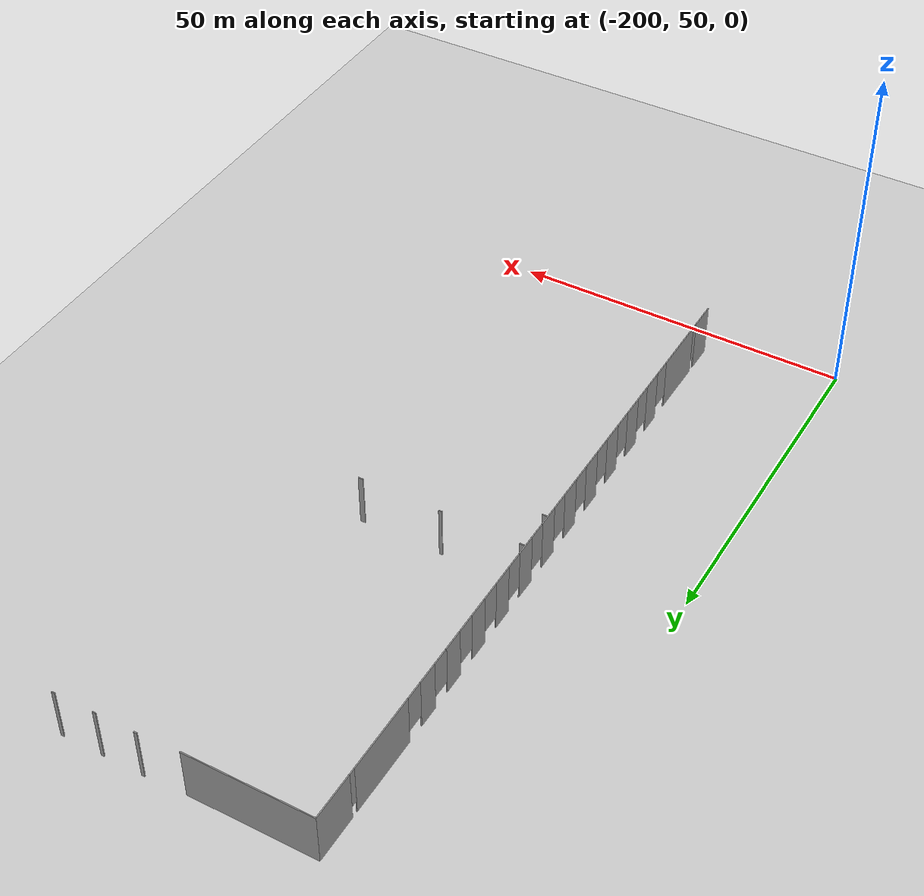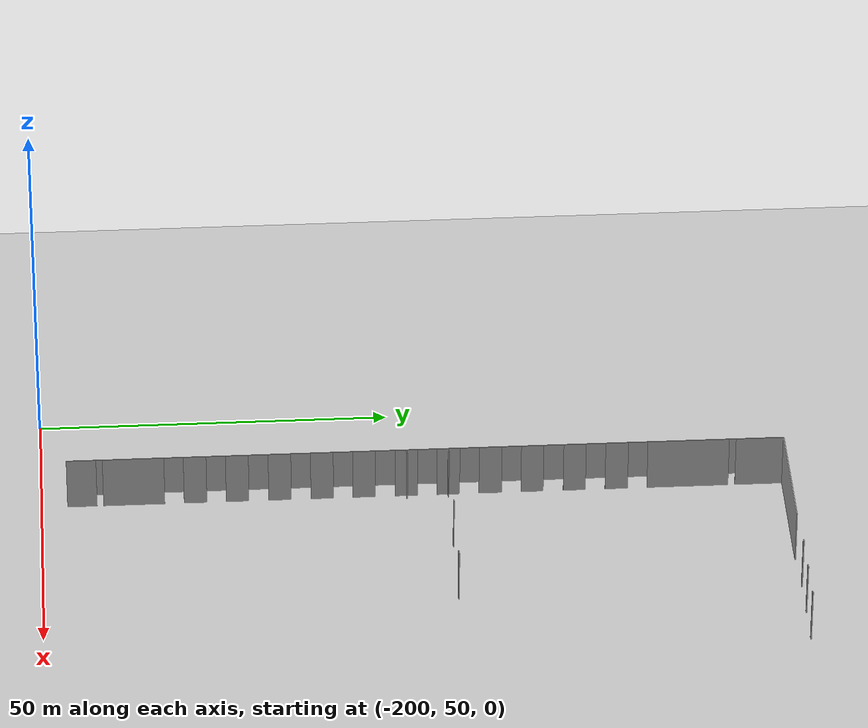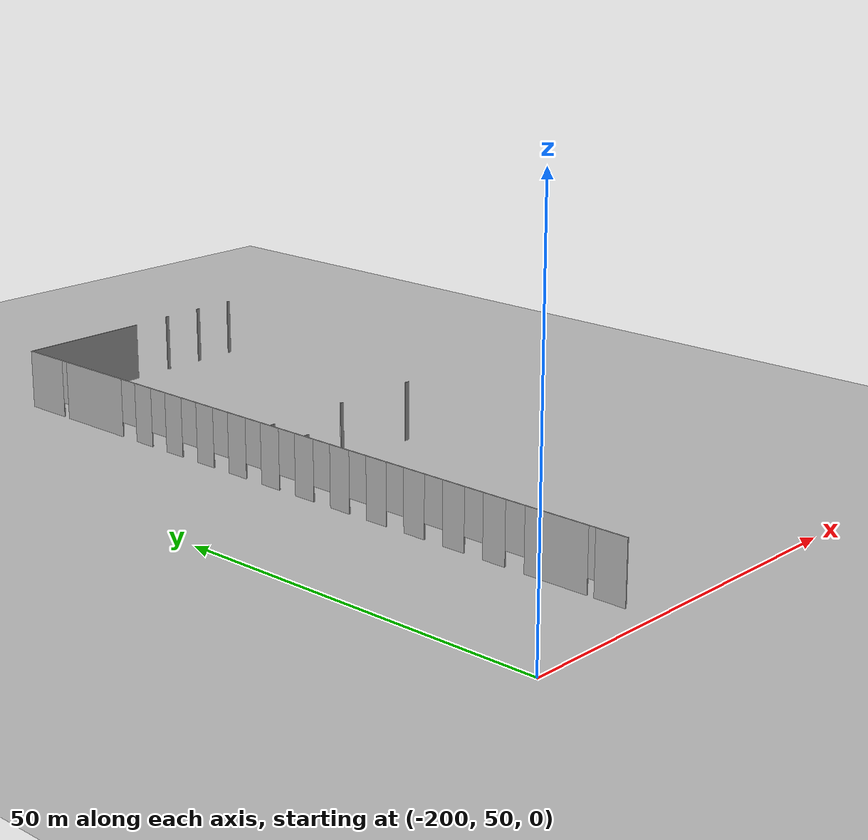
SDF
<sdf version="1.7">
 <world name="default">
  <model name="ground_plane">
   <static>1</static>
   <link name="link">
    <collision name="collision">
     <geometry><plane><normal>0 0 1</normal><size>100 100</size></plane></geometry>
     <surface><friction><ode><mu>100</mu><mu2>50</mu2></ode></friction></surface>
    </collision>
    <visual name="visual">
     <cast_shadows>0</cast_shadows>
     <geometry><plane><normal>0 0 1</normal><size>100 100</size></plane></geometry>
     <material>
      <script><uri>file://media/materials/scripts/gazebo.material</uri><name>Gazebo/Grey</name></script>
     </material>
    </visual>
   </link>
  </model>
  <model name="AM_Wall">
   <pose>-90.484 78.0434 0 0 -0 0</pose>
   <link name="Wall_17">
    <pose>-90.348 26.67 0 0 -0 1.5708</pose>
    <visual name="Wall_17_Visual_0">
     <pose>-48.8954 0 4 0 -0 0</pose>
     <geometry><box><size>4.20921 0.15 8</size></box></geometry>
     <material>
      <script><uri>file://media/materials/scripts/gazebo.material</uri><name>Gazebo/Grey</name></script>
      <ambient>1 1 1 1</ambient>
     </material>
     <meta><layer>0</layer></meta>
    </visual>
    <collision name="Wall_17_Collision_0">
     <geometry><box><size>4.20921 0.15 8</size></box></geometry>
     <pose>-48.8954 0 4 0 -0 0</pose>
    </collision>
    <visual name="Wall_17_Visual_1">
     <pose>-41.5368 0 4 0 -0 0</pose>
     <geometry><box><size>8.70797 0.15 8</size></box></geometry>
     <material>
      <script><uri>file://media/materials/scripts/gazebo.material</uri><name>Gazebo/Grey</name></script>
      <ambient>1 1 1 1</ambient>
     </material>
     <meta><layer>0</layer></meta>
    </visual>
    <collision name="Wall_17_Collision_1">
     <geometry><box><size>8.70797 0.15 8</size></box></geometry>
     <pose>-41.5368 0 4 0 -0 0</pose>
    </collision>
    <visual name="Wall_17_Visual_2">
     <pose>-32.823 0 4 0 -0 0</pose>
     <geometry><box><size>3.2326 0.15 8</size></box></geometry>
     <material>
      <script><uri>file://media/materials/scripts/gazebo.material</uri><name>Gazebo/Grey</name></script>
      <ambient>1 1 1 1</ambient>
     </material>
     <meta><layer>0</layer></meta>
    </visual>
    <collision name="Wall_17_Collision_2">
     <geometry><box><size>3.2326 0.15 8</size></box></geometry>
     <pose>-32.823 0 4 0 -0 0</pose>
    </collision>
    <visual name="Wall_17_Visual_3">
     <pose>-26.8406 0 4 0 -0 0</pose>
     <geometry><box><size>3.24213 0.15 8</size></box></geometry>
     <material>
      <script><uri>file://media/materials/scripts/gazebo.material</uri><name>Gazebo/Grey</name></script>
      <ambient>1 1 1 1</ambient>
     </material>
     <meta><layer>0</layer></meta>
    </visual>
    <collision name="Wall_17_Collision_3">
     <geometry><box><size>3.24213 0.15 8</size></box></geometry>
     <pose>-26.8406 0 4 0 -0 0</pose>
    </collision>
    <visual name="Wall_17_Visual_4">
     <pose>-20.8082 0 4 0 -0 0</pose>
     <geometry><box><size>3.2182 0.15 8</size></box></geometry>
     <material>
      <script><uri>file://media/materials/scripts/gazebo.material</uri><name>Gazebo/Grey</name></script>
      <ambient>1 1 1 1</ambient>
     </material>
     <meta><layer>0</layer></meta>
    </visual>
    <collision name="Wall_17_Collision_4">
     <geometry><box><size>3.2182 0.15 8</size></box></geometry>
     <pose>-20.8082 0 4 0 -0 0</pose>
    </collision>
    <visual name="Wall_17_Visual_5">
     <pose>-14.7991 0 4 0 -0 0</pose>
     <geometry><box><size>3.21936 0.15 8</size></box></geometry>
     <material>
      <script><uri>file://media/materials/scripts/gazebo.material</uri><name>Gazebo/Grey</name></script>
      <ambient>1 1 1 1</ambient>
     </material>
     <meta><layer>0</layer></meta>
    </visual>
    <collision name="Wall_17_Collision_5">
     <geometry><box><size>3.21936 0.15 8</size></box></geometry>
     <pose>-14.7991 0 4 0 -0 0</pose>
    </collision>
    <visual name="Wall_17_Visual_6">
     <pose>-8.81504 0 4 0 -0 0</pose>
     <geometry><box><size>3.1983 0.15 8</size></box></geometry>
     <material>
      <script><uri>file://media/materials/scripts/gazebo.material</uri><name>Gazebo/Grey</name></script>
      <ambient>1 1 1 1</ambient>
     </material>
     <meta><layer>0</layer></meta>
    </visual>
    <collision name="Wall_17_Collision_6">
     <geometry><box><size>3.1983 0.15 8</size></box></geometry>
     <pose>-8.81504 0 4 0 -0 0</pose>
    </collision>
    <visual name="Wall_17_Visual_7">
     <pose>-2.81126 0 4 0 -0 0</pose>
     <geometry><box><size>3.1983 0.15 8</size></box></geometry>
     <material>
      <script><uri>file://media/materials/scripts/gazebo.material</uri><name>Gazebo/Grey</name></script>
      <ambient>1 1 1 1</ambient>
     </material>
     <meta><layer>0</layer></meta>
    </visual>
    <collision name="Wall_17_Collision_7">
     <geometry><box><size>3.1983 0.15 8</size></box></geometry>
     <pose>-2.81126 0 4 0 -0 0</pose>
    </collision>
    <visual name="Wall_17_Visual_8">
     <pose>3.19252 0 4 0 -0 0</pose>
     <geometry><box><size>3.22854 0.15 8</size></box></geometry>
     <material>
      <script><uri>file://media/materials/scripts/gazebo.material</uri><name>Gazebo/Grey</name></script>
      <ambient>1 1 1 1</ambient>
     </material>
     <meta><layer>0</layer></meta>
    </visual>
    <collision name="Wall_17_Collision_8">
     <geometry><box><size>3.22854 0.15 8</size></box></geometry>
     <pose>3.19252 0 4 0 -0 0</pose>
    </collision>
    <visual name="Wall_17_Visual_9">
     <pose>9.17362 0 4 0 -0 0</pose>
     <geometry><box><size>3.24367 0.15 8</size></box></geometry>
     <material>
      <script><uri>file://media/materials/scripts/gazebo.material</uri><name>Gazebo/Grey</name></script>
      <ambient>1 1 1 1</ambient>
     </material>
     <meta><layer>0</layer></meta>
    </visual>
    <collision name="Wall_17_Collision_9">
     <geometry><box><size>3.24367 0.15 8</size></box></geometry>
     <pose>9.17362 0 4 0 -0 0</pose>
    </collision>
    <visual name="Wall_17_Visual_10">
     <pose>15.1472 0 4 0 -0 0</pose>
     <geometry><box><size>3.18317 0.15 8</size></box></geometry>
     <material>
      <script><uri>file://media/materials/scripts/gazebo.material</uri><name>Gazebo/Grey</name></script>
      <ambient>1 1 1 1</ambient>
     </material>
     <meta><layer>0</layer></meta>
    </visual>
    <collision name="Wall_17_Collision_10">
     <geometry><box><size>3.18317 0.15 8</size></box></geometry>
     <pose>15.1472 0 4 0 -0 0</pose>
    </collision>
    <visual name="Wall_17_Visual_11">
     <pose>21.1812 0 4 0 -0 0</pose>
     <geometry><box><size>3.18318 0.15 8</size></box></geometry>
     <material>
      <script><uri>file://media/materials/scripts/gazebo.material</uri><name>Gazebo/Grey</name></script>
      <ambient>1 1 1 1</ambient>
     </material>
     <meta><layer>0</layer></meta>
    </visual>
    <collision name="Wall_17_Collision_11">
     <geometry><box><size>3.18318 0.15 8</size></box></geometry>
     <pose>21.1812 0 4 0 -0 0</pose>
    </collision>
    <visual name="Wall_17_Visual_12">
     <pose>27.1812 0 4 0 -0 0</pose>
     <geometry><box><size>3.2361 0.15 8</size></box></geometry>
     <material>
      <script><uri>file://media/materials/scripts/gazebo.material</uri><name>Gazebo/Grey</name></script>
      <ambient>1 1 1 1</ambient>
     </material>
     <meta><layer>0</layer></meta>
    </visual>
    <collision name="Wall_17_Collision_12">
     <geometry><box><size>3.2361 0.15 8</size></box></geometry>
     <pose>27.1812 0 4 0 -0 0</pose>
    </collision>
    <visual name="Wall_17_Visual_13">
     <pose>37.366 0 4 0 -0 0</pose>
     <geometry><box><size>11.6134 0.15 8</size></box></geometry>
     <material>
      <script><uri>file://media/materials/scripts/gazebo.material</uri><name>Gazebo/Grey</name></script>
      <ambient>1 1 1 1</ambient>
     </material>
     <meta><layer>0</layer></meta>
    </visual>
    <collision name="Wall_17_Collision_13">
     <geometry><box><size>11.6134 0.15 8</size></box></geometry>
     <pose>37.366 0 4 0 -0 0</pose>
    </collision>
    <visual name="Wall_17_Visual_14">
     <pose>47.5666 0 4 0 -0 0</pose>
     <geometry><box><size>6.86677 0.15 8</size></box></geometry>
     <material>
      <script><uri>file://media/materials/scripts/gazebo.material</uri><name>Gazebo/Grey</name></script>
      <ambient>1 1 1 1</ambient>
     </material>
     <meta><layer>0</layer></meta>
    </visual>
    <collision name="Wall_17_Collision_14">
     <geometry><box><size>6.86677 0.15 8</size></box></geometry>
     <pose>47.5666 0 4 0 -0 0</pose>
    </collision>
    <visual name="Wall_17_Visual_15">
     <pose>-46.3408 0 5 0 -0 0</pose>
     <geometry><box><size>0.9 0.15 6</size></box></geometry>
     <material>
      <script><uri>file://media/materials/scripts/gazebo.material</uri><name>Gazebo/Grey</name></script>
      <ambient>1 1 1 1</ambient>
     </material>
     <meta><layer>0</layer></meta>
    </visual>
    <collision name="Wall_17_Collision_15">
     <geometry><box><size>0.9 0.15 6</size></box></geometry>
     <pose>-46.3408 0 5 0 -0 0</pose>
    </collision>
    <visual name="Wall_17_Visual_16">
     <pose>-35.8111 0 5 0 -0 0</pose>
     <geometry><box><size>2.74352 0.15 6</size></box></geometry>
     <material>
      <script><uri>file://media/materials/scripts/gazebo.material</uri><name>Gazebo/Grey</name></script>
      <ambient>1 1 1 1</ambient>
     </material>
     <meta><layer>0</layer></meta>
    </visual>
    <collision name="Wall_17_Collision_16">
     <geometry><box><size>2.74352 0.15 6</size></box></geometry>
     <pose>-35.8111 0 5 0 -0 0</pose>
    </collision>
    <visual name="Wall_17_Visual_17">
     <pose>-29.8342 0 5 0 -0 0</pose>
     <geometry><box><size>2.74499 0.15 6</size></box></geometry>
     <material>
      <script><uri>file://media/materials/scripts/gazebo.material</uri><name>Gazebo/Grey</name></script>
      <ambient>1 1 1 1</ambient>
     </material>
     <meta><layer>0</layer></meta>
    </visual>
    <collision name="Wall_17_Collision_17">
     <geometry><box><size>2.74499 0.15 6</size></box></geometry>
     <pose>-29.8342 0 5 0 -0 0</pose>
    </collision>
    <visual name="Wall_17_Visual_18">
     <pose>-23.8185 0 5 0 -0 0</pose>
     <geometry><box><size>2.80224 0.15 6</size></box></geometry>
     <material>
      <script><uri>file://media/materials/scripts/gazebo.material</uri><name>Gazebo/Grey</name></script>
      <ambient>1 1 1 1</ambient>
     </material>
     <meta><layer>0</layer></meta>
    </visual>
    <collision name="Wall_17_Collision_18">
     <geometry><box><size>2.80224 0.15 6</size></box></geometry>
     <pose>-23.8185 0 5 0 -0 0</pose>
    </collision>
    <visual name="Wall_17_Visual_19">
     <pose>-17.804 0 5 0 -0 0</pose>
     <geometry><box><size>2.79036 0.15 6</size></box></geometry>
     <material>
      <script><uri>file://media/materials/scripts/gazebo.material</uri><name>Gazebo/Grey</name></script>
      <ambient>1 1 1 1</ambient>
     </material>
     <meta><layer>0</layer></meta>
    </visual>
    <collision name="Wall_17_Collision_19">
     <geometry><box><size>2.79036 0.15 6</size></box></geometry>
     <pose>-17.804 0 5 0 -0 0</pose>
    </collision>
    <visual name="Wall_17_Visual_20">
     <pose>-11.8018 0 5 0 -0 0</pose>
     <geometry><box><size>2.77524 0.15 6</size></box></geometry>
     <material>
      <script><uri>file://media/materials/scripts/gazebo.material</uri><name>Gazebo/Grey</name></script>
      <ambient>1 1 1 1</ambient>
     </material>
     <meta><layer>0</layer></meta>
    </visual>
    <collision name="Wall_17_Collision_20">
     <geometry><box><size>2.77524 0.15 6</size></box></geometry>
     <pose>-11.8018 0 5 0 -0 0</pose>
    </collision>
    <visual name="Wall_17_Visual_21">
     <pose>-5.81315 0 5 0 -0 0</pose>
     <geometry><box><size>2.80548 0.15 6</size></box></geometry>
     <material>
      <script><uri>file://media/materials/scripts/gazebo.material</uri><name>Gazebo/Grey</name></script>
      <ambient>1 1 1 1</ambient>
     </material>
     <meta><layer>0</layer></meta>
    </visual>
    <collision name="Wall_17_Collision_21">
     <geometry><box><size>2.80548 0.15 6</size></box></geometry>
     <pose>-5.81315 0 5 0 -0 0</pose>
    </collision>
    <visual name="Wall_17_Visual_22">
     <pose>0.183069 0 5 0 -0 0</pose>
     <geometry><box><size>2.79036 0.15 6</size></box></geometry>
     <material>
      <script><uri>file://media/materials/scripts/gazebo.material</uri><name>Gazebo/Grey</name></script>
      <ambient>1 1 1 1</ambient>
     </material>
     <meta><layer>0</layer></meta>
    </visual>
    <collision name="Wall_17_Collision_22">
     <geometry><box><size>2.79036 0.15 6</size></box></geometry>
     <pose>0.183069 0 5 0 -0 0</pose>
    </collision>
    <visual name="Wall_17_Visual_23">
     <pose>6.17929 0 5 0 -0 0</pose>
     <geometry><box><size>2.74499 0.15 6</size></box></geometry>
     <material>
      <script><uri>file://media/materials/scripts/gazebo.material</uri><name>Gazebo/Grey</name></script>
      <ambient>1 1 1 1</ambient>
     </material>
     <meta><layer>0</layer></meta>
    </visual>
    <collision name="Wall_17_Collision_23">
     <geometry><box><size>2.74499 0.15 6</size></box></geometry>
     <pose>6.17929 0 5 0 -0 0</pose>
    </collision>
    <visual name="Wall_17_Visual_24">
     <pose>12.1755 0 5 0 -0 0</pose>
     <geometry><box><size>2.76011 0.15 6</size></box></geometry>
     <material>
      <script><uri>file://media/materials/scripts/gazebo.material</uri><name>Gazebo/Grey</name></script>
      <ambient>1 1 1 1</ambient>
     </material>
     <meta><layer>0</layer></meta>
    </visual>
    <collision name="Wall_17_Collision_24">
     <geometry><box><size>2.76011 0.15 6</size></box></geometry>
     <pose>12.1755 0 5 0 -0 0</pose>
    </collision>
    <visual name="Wall_17_Visual_25">
     <pose>18.1642 0 5 0 -0 0</pose>
     <geometry><box><size>2.85085 0.15 6</size></box></geometry>
     <material>
      <script><uri>file://media/materials/scripts/gazebo.material</uri><name>Gazebo/Grey</name></script>
      <ambient>1 1 1 1</ambient>
     </material>
     <meta><layer>0</layer></meta>
    </visual>
    <collision name="Wall_17_Collision_25">
     <geometry><box><size>2.85085 0.15 6</size></box></geometry>
     <pose>18.1642 0 5 0 -0 0</pose>
    </collision>
    <visual name="Wall_17_Visual_26">
     <pose>24.1679 0 5 0 -0 0</pose>
     <geometry><box><size>2.79036 0.15 6</size></box></geometry>
     <material>
      <script><uri>file://media/materials/scripts/gazebo.material</uri><name>Gazebo/Grey</name></script>
      <ambient>1 1 1 1</ambient>
     </material>
     <meta><layer>0</layer></meta>
    </visual>
    <collision name="Wall_17_Collision_26">
     <geometry><box><size>2.79036 0.15 6</size></box></geometry>
     <pose>24.1679 0 5 0 -0 0</pose>
    </collision>
    <visual name="Wall_17_Visual_27">
     <pose>30.1793 0 5 0 -0 0</pose>
     <geometry><box><size>2.76011 0.15 6</size></box></geometry>
     <material>
      <script><uri>file://media/materials/scripts/gazebo.material</uri><name>Gazebo/Grey</name></script>
      <ambient>1 1 1 1</ambient>
     </material>
     <meta><layer>0</layer></meta>
    </visual>
    <collision name="Wall_17_Collision_27">
     <geometry><box><size>2.76011 0.15 6</size></box></geometry>
     <pose>30.1793 0 5 0 -0 0</pose>
    </collision>
    <visual name="Wall_17_Visual_28">
     <pose>43.653 0 5 0 -0 0</pose>
     <geometry><box><size>0.960491 0.15 6</size></box></geometry>
     <material>
      <script><uri>file://media/materials/scripts/gazebo.material</uri><name>Gazebo/Grey</name></script>
      <ambient>1 1 1 1</ambient>
     </material>
     <meta><layer>0</layer></meta>
    </visual>
    <collision name="Wall_17_Collision_28">
     <geometry><box><size>0.960491 0.15 6</size></box></geometry>
     <pose>43.653 0 5 0 -0 0</pose>
    </collision>
   </link>
   <link name="Wall_178">
    <collision name="Wall_178_Collision">
     <geometry><box><size>0.75 0.15 8</size></box></geometry>
     <pose>0 0 4 0 -0 0</pose>
    </collision>
    <visual name="Wall_178_Visual">
     <pose>0 0 4 0 -0 0</pose>
     <geometry><box><size>0.75 0.15 8</size></box></geometry>
     <material>
      <script><uri>file://media/materials/scripts/gazebo.material</uri><name>Gazebo/Grey</name></script>
      <ambient>1 1 1 1</ambient>
     </material>
     <meta><layer>0</layer></meta>
    </visual>
    <pose>-65.876 29.853 0 0 -0 0</pose>
   </link>
   <link name="Wall_180">
    <collision name="Wall_180_Collision">
     <geometry><box><size>0.5 0.15 8</size></box></geometry>
     <pose>0 0 4 0 -0 0</pose>
    </collision>
    <visual name="Wall_180_Visual">
     <pose>0 0 4 0 -0 0</pose>
     <geometry><box><size>0.5 0.15 8</size></box></geometry>
     <material>
      <script><uri>file://media/materials/scripts/gazebo.material</uri><name>Gazebo/Grey</name></script>
      <ambient>1 1 1 1</ambient>
     </material>
     <meta><layer>0</layer></meta>
    </visual>
    <pose>-77.914 29.866 0 0 -0 0</pose>
   </link>
   <link name="Wall_182">
    <collision name="Wall_182_Collision">
     <geometry><box><size>0.75 0.15 8</size></box></geometry>
     <pose>0 0 4 0 -0 0</pose>
    </collision>
    <visual name="Wall_182_Visual">
     <pose>0 0 4 0 -0 0</pose>
     <geometry><box><size>0.75 0.15 8</size></box></geometry>
     <material>
      <script><uri>file://media/materials/scripts/gazebo.material</uri><name>Gazebo/Grey</name></script>
      <ambient>1 1 1 1</ambient>
     </material>
     <meta><layer>0</layer></meta>
    </visual>
    <pose>-89.894 29.846 0 0 -0 3.14159</pose>
   </link>
   <link name="Wall_184">
    <collision name="Wall_184_Collision">
     <geometry><box><size>0.75 0.15 8</size></box></geometry>
     <pose>0 0 4 0 -0 0</pose>
    </collision>
    <visual name="Wall_184_Visual">
     <pose>0 0 4 0 -0 0</pose>
     <geometry><box><size>0.75 0.15 8</size></box></geometry>
     <material>
      <script><uri>file://media/materials/scripts/gazebo.material</uri><name>Gazebo/Grey</name></script>
      <ambient>1 1 1 1</ambient>
     </material>
     <meta><layer>0</layer></meta>
    </visual>
    <pose>-89.874 23.912 0 0 -0 3.14159</pose>
   </link>
   <link name="Wall_21">
    <collision name="Wall_21_Collision">
     <geometry><box><size>18.5 0.15 8</size></box></geometry>
     <pose>0 0 4 0 -0 0</pose>
    </collision>
    <visual name="Wall_21_Visual">
     <pose>0 0 4 0 -0 0</pose>
     <geometry><box><size>18.5 0.15 8</size></box></geometry>
     <material>
      <script><uri>file://media/materials/scripts/gazebo.material</uri><name>Gazebo/Grey</name></script>
      <ambient>1 1 1 1</ambient>
     </material>
     <meta><layer>0</layer></meta>
    </visual>
    <pose>-81.173 77.595 0 0 -0 0</pose>
   </link>
   <link name="Wall_25">
    <collision name="Wall_25_Collision">
     <geometry><box><size>0.5 0.15 8</size></box></geometry>
     <pose>0 0 4 0 -0 0</pose>
    </collision>
    <visual name="Wall_25_Visual">
     <pose>0 0 4 0 -0 0</pose>
     <geometry><box><size>0.5 0.15 8</size></box></geometry>
     <material>
      <script><uri>file://media/materials/scripts/gazebo.material</uri><name>Gazebo/Grey</name></script>
      <ambient>1 1 1 1</ambient>
     </material>
     <meta><layer>0</layer></meta>
    </visual>
    <pose>-65.882 77.895 0 0 -0 0</pose>
   </link>
   <link name="Wall_27">
    <collision name="Wall_27_Collision">
     <geometry><box><size>0.5 0.15 8</size></box></geometry>
     <pose>0 0 4 0 -0 0</pose>
    </collision>
    <visual name="Wall_27_Visual">
     <pose>0 0 4 0 -0 0</pose>
     <geometry><box><size>0.5 0.15 8</size></box></geometry>
     <material>
      <script><uri>file://media/materials/scripts/gazebo.material</uri><name>Gazebo/Grey</name></script>
      <ambient>1 1 1 1</ambient>
     </material>
     <meta><layer>0</layer></meta>
    </visual>
    <pose>-59.938 77.895 0 0 -0 0</pose>
   </link>
   <link name="Wall_29">
    <collision name="Wall_29_Collision">
     <geometry><box><size>0.5 0.15 8</size></box></geometry>
     <pose>0 0 4 0 -0 0</pose>
    </collision>
    <visual name="Wall_29_Visual">
     <pose>0 0 4 0 -0 0</pose>
     <geometry><box><size>0.5 0.15 8</size></box></geometry>
     <material>
      <script><uri>file://media/materials/scripts/gazebo.material</uri><name>Gazebo/Grey</name></script>
      <ambient>1 1 1 1</ambient>
     </material>
     <meta><layer>0</layer></meta>
    </visual>
    <pose>-53.947 77.907 0 0 -0 0</pose>
   </link>
   <static>1</static>
  </model>
 </world>
</sdf>
